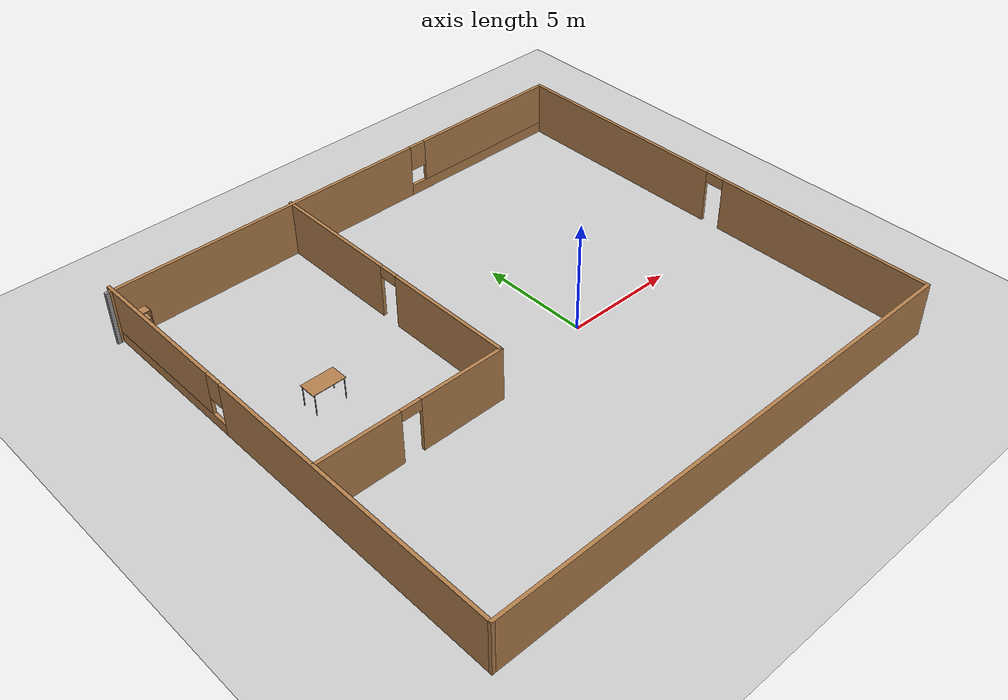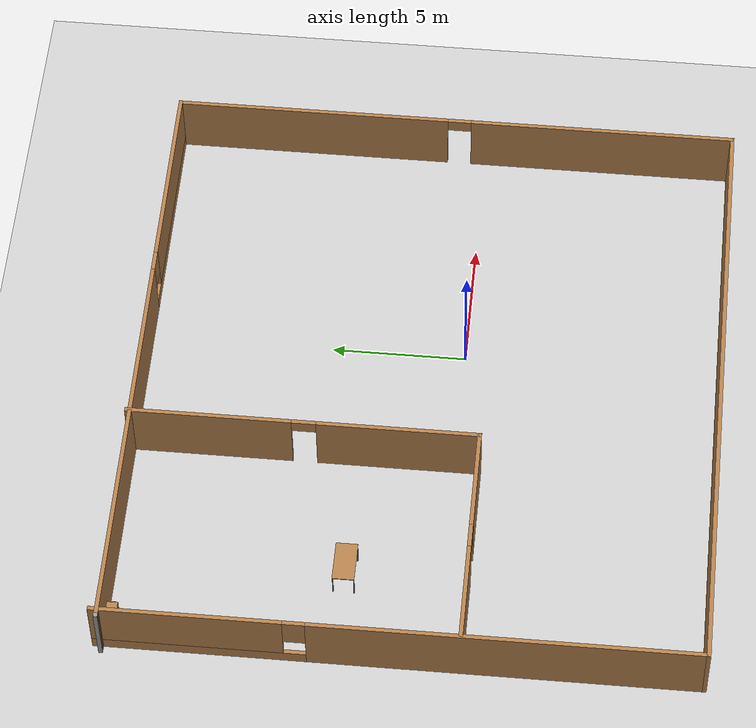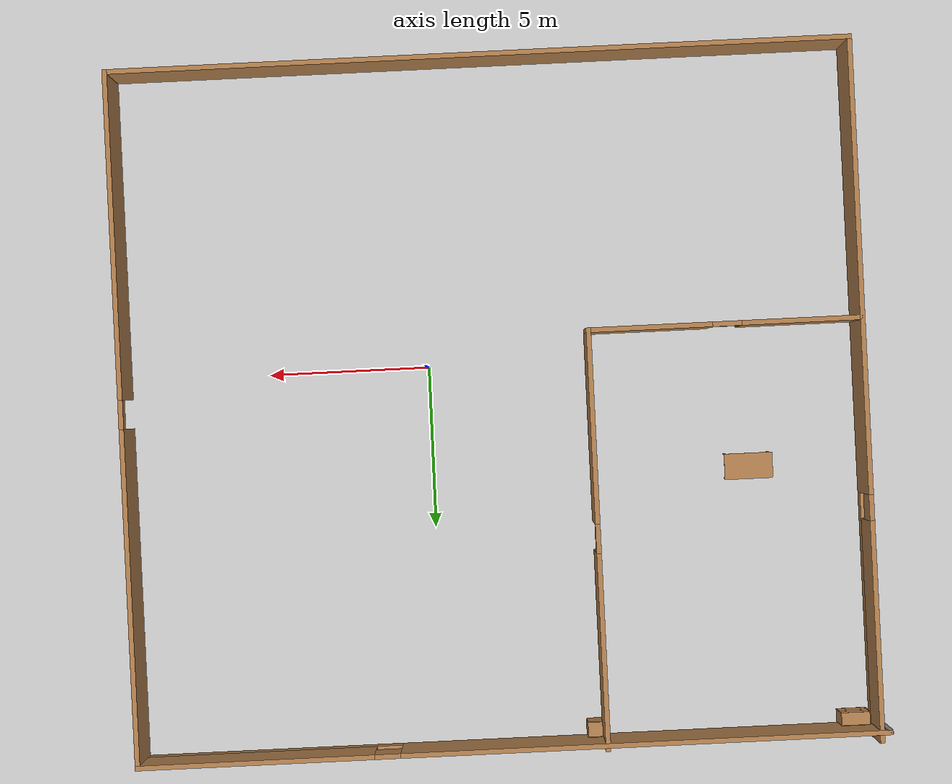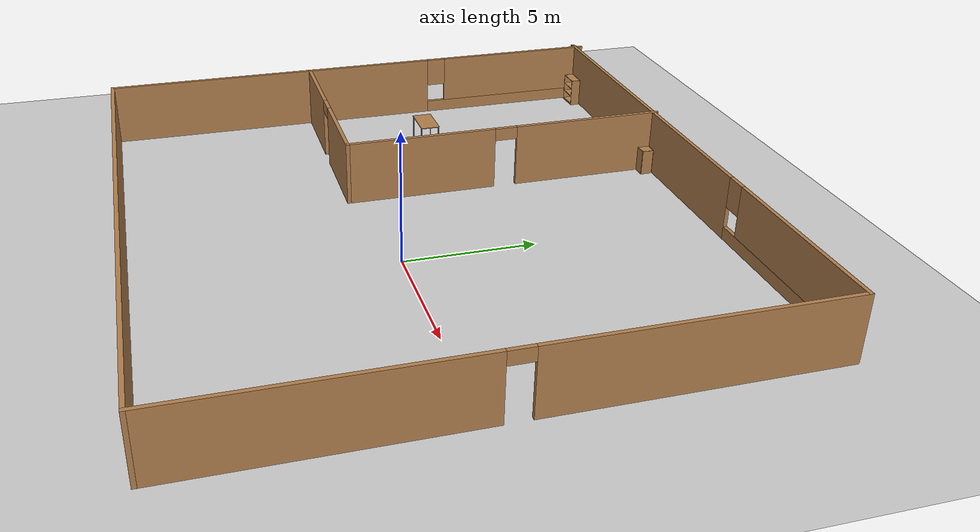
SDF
<sdf version="1.7">
 <world name="default">
  <light name="sun" type="directional">
   <pose>0 0 10 0 -0 0</pose>
   <diffuse>0.8 0.8 0.8 1</diffuse>
   <specular>0.2 0.2 0.2 1</specular>
   <attenuation>
    <range>1000</range>
    <constant>0.9</constant>
    <linear>0.01</linear>
    <quadratic>0.001</quadratic>
   </attenuation>
   <direction>-0.5 0.1 -0.9</direction>
   <spot><inner_angle>0</inner_angle><outer_angle>0</outer_angle><falloff>0</falloff></spot>
  </light>
  <model name="ground_plane">
   <static>1</static>
   <link name="link">
    <collision name="collision">
     <geometry><plane><normal>0 0 1</normal><size>100 100</size></plane></geometry>
     <surface>
      <contact><collide_bitmask>65535</collide_bitmask></contact>
      <friction><ode><mu>100</mu><mu2>50</mu2></ode></friction>
     </surface>
    </collision>
    <visual name="visual">
     <cast_shadows>0</cast_shadows>
     <geometry><plane><normal>0 0 1</normal><size>100 100</size></plane></geometry>
     <material>
      <script><uri>file://media/materials/scripts/gazebo.material</uri><name>Gazebo/Grey</name></script>
     </material>
    </visual>
   </link>
  </model>
  <gravity>0 0 -9.8</gravity>
  <magnetic_field>6e-06 2.3e-05 -4.2e-05</magnetic_field>
  <atmosphere type="adiabatic"/>
  <physics type="ode">
   <max_step_size>0.001</max_step_size>
   <real_time_factor>1</real_time_factor>
   <real_time_update_rate>1000</real_time_update_rate>
  </physics>
  <scene><ambient>0.4 0.4 0.4 1</ambient><background>0.7 0.7 0.7 1</background><shadows>1</shadows></scene>
  <audio><device>default</device></audio>
  <spherical_coordinates>
   <surface_model>EARTH_WGS84</surface_model>
   <latitude_deg>0</latitude_deg>
   <longitude_deg>0</longitude_deg>
   <elevation>0</elevation>
   <heading_deg>0</heading_deg>
  </spherical_coordinates>
  <model name="project_house_model">
   <pose>-2.116 1.303 0 0 -0 0</pose>
   <link name="Wall_2">
    <collision name="Wall_2_Collision">
     <geometry><box><size>0.16 0.15 2.5</size></box></geometry>
     <pose>0 0 1.25 0 -0 0</pose>
    </collision>
    <visual name="Wall_2_Visual">
     <pose>0 0 1.25 0 -0 0</pose>
     <geometry><box><size>0.16 0.15 2.5</size></box></geometry>
     <material>
      <script><uri>file://media/materials/scripts/gazebo.material</uri><name>Gazebo/Grey</name></script>
      <ambient>1 1 1 1</ambient>
     </material>
     <meta><layer>0</layer></meta>
    </visual>
    <pose>-11.55 10.55 0 0 -0 0</pose>
   </link>
   <link name="Wall_3">
    <pose>0.004999 10.55 0 0 -0 0</pose>
    <visual name="Wall_3_Visual_0">
     <pose>-4.07524 0 1.25 0 -0 0</pose>
     <geometry><box><size>15.0995 0.15 2.5</size></box></geometry>
     <material>
      <script><uri>file://media/materials/scripts/gazebo.material</uri><name>Gazebo/Wood</name></script>
      <ambient>1 1 1 1</ambient>
     </material>
     <meta><layer>0</layer></meta>
    </visual>
    <collision name="Wall_3_Collision_0">
     <geometry><box><size>15.0995 0.15 2.5</size></box></geometry>
     <pose>-4.07524 0 1.25 0 -0 0</pose>
    </collision>
    <visual name="Wall_3_Visual_1">
     <pose>7.54976 0 0.25 0 -0 0</pose>
     <geometry><box><size>8.15049 0.15 0.5</size></box></geometry>
     <material>
      <script><uri>file://media/materials/scripts/gazebo.material</uri><name>Gazebo/Wood</name></script>
      <ambient>1 1 1 1</ambient>
     </material>
     <meta><layer>0</layer></meta>
    </visual>
    <collision name="Wall_3_Collision_1">
     <geometry><box><size>8.15049 0.15 0.5</size></box></geometry>
     <pose>7.54976 0 0.25 0 -0 0</pose>
    </collision>
    <visual name="Wall_3_Visual_2">
     <pose>7.94976 0 1.5 0 -0 0</pose>
     <geometry><box><size>7.35049 0.15 2</size></box></geometry>
     <material>
      <script><uri>file://media/materials/scripts/gazebo.material</uri><name>Gazebo/Wood</name></script>
      <ambient>1 1 1 1</ambient>
     </material>
     <meta><layer>0</layer></meta>
    </visual>
    <collision name="Wall_3_Collision_2">
     <geometry><box><size>7.35049 0.15 2</size></box></geometry>
     <pose>7.94976 0 1.5 0 -0 0</pose>
    </collision>
    <visual name="Wall_3_Visual_3">
     <pose>3.87451 0 1.9 0 -0 0</pose>
     <geometry><box><size>0.8 0.15 1.2</size></box></geometry>
     <material>
      <script><uri>file://media/materials/scripts/gazebo.material</uri><name>Gazebo/Wood</name></script>
      <ambient>1 1 1 1</ambient>
     </material>
     <meta><layer>0</layer></meta>
    </visual>
    <collision name="Wall_3_Collision_3">
     <geometry><box><size>0.8 0.15 1.2</size></box></geometry>
     <pose>3.87451 0 1.9 0 -0 0</pose>
    </collision>
   </link>
   <link name="Wall_4">
    <pose>11.555 -0.125 0 0 -0 -1.5708</pose>
    <visual name="Wall_4_Visual_0">
     <pose>-5.51637 0 1.25 0 -0 0</pose>
     <geometry><box><size>10.4673 0.15 2.5</size></box></geometry>
     <material>
      <script><uri>file://media/materials/scripts/gazebo.material</uri><name>Gazebo/Wood</name></script>
      <ambient>1 1 1 1</ambient>
     </material>
     <meta><layer>0</layer></meta>
    </visual>
    <collision name="Wall_4_Collision_0">
     <geometry><box><size>10.4673 0.15 2.5</size></box></geometry>
     <pose>-5.51637 0 1.25 0 -0 0</pose>
    </collision>
    <visual name="Wall_4_Visual_1">
     <pose>5.68363 0 1.25 0 -0 0</pose>
     <geometry><box><size>10.1327 0.15 2.5</size></box></geometry>
     <material>
      <script><uri>file://media/materials/scripts/gazebo.material</uri><name>Gazebo/Wood</name></script>
      <ambient>1 1 1 1</ambient>
     </material>
     <meta><layer>0</layer></meta>
    </visual>
    <collision name="Wall_4_Collision_1">
     <geometry><box><size>10.1327 0.15 2.5</size></box></geometry>
     <pose>5.68363 0 1.25 0 -0 0</pose>
    </collision>
    <visual name="Wall_4_Visual_2">
     <pose>0.167253 0 2.25 0 -0 0</pose>
     <geometry><box><size>0.9 0.15 0.5</size></box></geometry>
     <material>
      <script><uri>file://media/materials/scripts/gazebo.material</uri><name>Gazebo/Wood</name></script>
      <ambient>1 1 1 1</ambient>
     </material>
     <meta><layer>0</layer></meta>
    </visual>
    <collision name="Wall_4_Collision_2">
     <geometry><box><size>0.9 0.15 0.5</size></box></geometry>
     <pose>0.167253 0 2.25 0 -0 0</pose>
    </collision>
   </link>
   <link name="Wall_5">
    <collision name="Wall_5_Collision">
     <geometry><box><size>23 0.15 2.5</size></box></geometry>
     <pose>0 0 1.25 0 -0 0</pose>
    </collision>
    <visual name="Wall_5_Visual">
     <pose>0 0 1.25 0 -0 0</pose>
     <geometry><box><size>23 0.15 2.5</size></box></geometry>
     <material>
      <script><uri>file://media/materials/scripts/gazebo.material</uri><name>Gazebo/Wood</name></script>
      <ambient>1 1 1 1</ambient>
     </material>
     <meta><layer>0</layer></meta>
    </visual>
    <pose>0.129999 -10.8 0 0 -0 3.14159</pose>
   </link>
   <link name="Wall_6">
    <pose>-11.295 -0 0 0 -0 1.5708</pose>
    <visual name="Wall_6_Visual_0">
     <pose>-3.8112 0 1.25 0 -0 0</pose>
     <geometry><box><size>14.1276 0.15 2.5</size></box></geometry>
     <material>
      <script><uri>file://media/materials/scripts/gazebo.material</uri><name>Gazebo/Wood</name></script>
      <ambient>1 1 1 1</ambient>
     </material>
     <meta><layer>0</layer></meta>
    </visual>
    <collision name="Wall_6_Collision_0">
     <geometry><box><size>14.1276 0.15 2.5</size></box></geometry>
     <pose>-3.8112 0 1.25 0 -0 0</pose>
    </collision>
    <visual name="Wall_6_Visual_1">
     <pose>7.0638 0 0.25 0 -0 0</pose>
     <geometry><box><size>7.62241 0.15 0.5</size></box></geometry>
     <material>
      <script><uri>file://media/materials/scripts/gazebo.material</uri><name>Gazebo/Wood</name></script>
      <ambient>1 1 1 1</ambient>
     </material>
     <meta><layer>0</layer></meta>
    </visual>
    <collision name="Wall_6_Collision_1">
     <geometry><box><size>7.62241 0.15 0.5</size></box></geometry>
     <pose>7.0638 0 0.25 0 -0 0</pose>
    </collision>
    <visual name="Wall_6_Visual_2">
     <pose>7.4638 0 1.5 0 -0 0</pose>
     <geometry><box><size>6.82241 0.15 2</size></box></geometry>
     <material>
      <script><uri>file://media/materials/scripts/gazebo.material</uri><name>Gazebo/Wood</name></script>
      <ambient>1 1 1 1</ambient>
     </material>
     <meta><layer>0</layer></meta>
    </visual>
    <collision name="Wall_6_Collision_2">
     <geometry><box><size>6.82241 0.15 2</size></box></geometry>
     <pose>7.4638 0 1.5 0 -0 0</pose>
    </collision>
    <visual name="Wall_6_Visual_3">
     <pose>3.65259 0 1.9 0 -0 0</pose>
     <geometry><box><size>0.8 0.15 1.2</size></box></geometry>
     <material>
      <script><uri>file://media/materials/scripts/gazebo.material</uri><name>Gazebo/Wood</name></script>
      <ambient>1 1 1 1</ambient>
     </material>
     <meta><layer>0</layer></meta>
    </visual>
    <collision name="Wall_6_Collision_3">
     <geometry><box><size>0.8 0.15 1.2</size></box></geometry>
     <pose>3.65259 0 1.9 0 -0 0</pose>
    </collision>
   </link>
   <link name="Wall_8">
    <pose>-2.88515 4.23116 0 0 -0 -1.5708</pose>
    <visual name="Wall_8_Visual_0">
     <pose>-3.45912 0 1.25 0 -0 0</pose>
     <geometry><box><size>6.08176 0.15 2.5</size></box></geometry>
     <material>
      <script><uri>file://media/materials/scripts/gazebo.material</uri><name>Gazebo/Wood</name></script>
      <ambient>1 1 1 1</ambient>
     </material>
     <meta><layer>0</layer></meta>
    </visual>
    <collision name="Wall_8_Collision_0">
     <geometry><box><size>6.08176 0.15 2.5</size></box></geometry>
     <pose>-3.45912 0 1.25 0 -0 0</pose>
    </collision>
    <visual name="Wall_8_Visual_1">
     <pose>3.49088 0 1.25 0 -0 0</pose>
     <geometry><box><size>6.01824 0.15 2.5</size></box></geometry>
     <material>
      <script><uri>file://media/materials/scripts/gazebo.material</uri><name>Gazebo/Wood</name></script>
      <ambient>1 1 1 1</ambient>
     </material>
     <meta><layer>0</layer></meta>
    </visual>
    <collision name="Wall_8_Collision_1">
     <geometry><box><size>6.01824 0.15 2.5</size></box></geometry>
     <pose>3.49088 0 1.25 0 -0 0</pose>
    </collision>
    <visual name="Wall_8_Visual_2">
     <pose>0.031759 0 2.25 0 -0 0</pose>
     <geometry><box><size>0.9 0.15 0.5</size></box></geometry>
     <material>
      <script><uri>file://media/materials/scripts/gazebo.material</uri><name>Gazebo/Wood</name></script>
      <ambient>1 1 1 1</ambient>
     </material>
     <meta><layer>0</layer></meta>
    </visual>
    <collision name="Wall_8_Collision_2">
     <geometry><box><size>0.9 0.15 0.5</size></box></geometry>
     <pose>0.031759 0 2.25 0 -0 0</pose>
    </collision>
   </link>
   <link name="Wall_9">
    <pose>-7.06015 -2.19384 0 0 -0 3.14159</pose>
    <visual name="Wall_9_Visual_0">
     <pose>-2.30643 0 1.25 0 -0 0</pose>
     <geometry><box><size>3.88714 0.15 2.5</size></box></geometry>
     <material>
      <script><uri>file://media/materials/scripts/gazebo.material</uri><name>Gazebo/Wood</name></script>
      <ambient>1 1 1 1</ambient>
     </material>
     <meta><layer>0</layer></meta>
    </visual>
    <collision name="Wall_9_Collision_0">
     <geometry><box><size>3.88714 0.15 2.5</size></box></geometry>
     <pose>-2.30643 0 1.25 0 -0 0</pose>
    </collision>
    <visual name="Wall_9_Visual_1">
     <pose>2.39357 0 1.25 0 -0 0</pose>
     <geometry><box><size>3.71285 0.15 2.5</size></box></geometry>
     <material>
      <script><uri>file://media/materials/scripts/gazebo.material</uri><name>Gazebo/Wood</name></script>
      <ambient>1 1 1 1</ambient>
     </material>
     <meta><layer>0</layer></meta>
    </visual>
    <collision name="Wall_9_Collision_1">
     <geometry><box><size>3.71285 0.15 2.5</size></box></geometry>
     <pose>2.39357 0 1.25 0 -0 0</pose>
    </collision>
    <visual name="Wall_9_Visual_2">
     <pose>0.087145 0 2.25 0 -0 0</pose>
     <geometry><box><size>0.9 0.15 0.5</size></box></geometry>
     <material>
      <script><uri>file://media/materials/scripts/gazebo.material</uri><name>Gazebo/Wood</name></script>
      <ambient>1 1 1 1</ambient>
     </material>
     <meta><layer>0</layer></meta>
    </visual>
    <collision name="Wall_9_Collision_2">
     <geometry><box><size>0.9 0.15 0.5</size></box></geometry>
     <pose>0.087145 0 2.25 0 -0 0</pose>
    </collision>
   </link>
   <static>1</static>
  </model>
  <model name="cabinet">
   <static>1</static>
   <link name="cabinet_bottom_plate">
    <inertial>
     <pose>0 0 -1 0 -0 0</pose>
     <inertia><ixx>2.05</ixx><ixy>0</ixy><ixz>0</ixz><iyy>2.05</iyy><iyz>0</iyz><izz>2.05</izz></inertia>
     <mass>25</mass>
    </inertial>
    <collision name="cabinet_bottom_plate_geom">
     <pose>0 0 0.01 0 -0 0</pose>
     <geometry><box><size>0.45 0.45 0.02</size></box></geometry>
    </collision>
    <visual name="cabinet_bottom_plate_geom_visual">
     <pose>0 0 0.01 0 -0 0</pose>
     <geometry><box><size>0.45 0.45 0.02</size></box></geometry>
     <material>
      <script><uri>file://media/materials/scripts/gazebo.material</uri><name>Gazebo/Wood</name></script>
     </material>
    </visual>
    <collision name="cabinet_bottom_plate_geom_cabinet_back_plate">
     <pose>0.235 0 0.51 0 -0 0</pose>
     <geometry><box><size>0.02 0.45 1.02</size></box></geometry>
    </collision>
    <visual name="cabinet_bottom_plate_geom_cabinet_back_plate_visual">
     <pose>0.235 0 0.51 0 -0 0</pose>
     <geometry><box><size>0.02 0.45 1.02</size></box></geometry>
     <material>
      <script><uri>file://media/materials/scripts/gazebo.material</uri><name>Gazebo/Wood</name></script>
     </material>
    </visual>
    <collision name="cabinet_bottom_plate_geom_cabinet_left_plate">
     <pose>0 0.235 0.51 0 -0 0</pose>
     <geometry><box><size>0.45 0.02 1.02</size></box></geometry>
    </collision>
    <visual name="cabinet_bottom_plate_geom_cabinet_left_plate_visual">
     <pose>0 0.235 0.51 0 -0 0</pose>
     <geometry><box><size>0.45 0.02 1.02</size></box></geometry>
     <material>
      <script><uri>file://media/materials/scripts/gazebo.material</uri><name>Gazebo/Wood</name></script>
     </material>
    </visual>
    <collision name="cabinet_bottom_plate_geom_cabinet_middle_plate">
     <pose>0 0 0.51 0 -0 0</pose>
     <geometry><box><size>0.45 0.45 0.02</size></box></geometry>
    </collision>
    <visual name="cabinet_bottom_plate_geom_cabinet_middle_plate_visual">
     <pose>0 0 0.51 0 -0 0</pose>
     <geometry><box><size>0.45 0.45 0.02</size></box></geometry>
     <material>
      <script><uri>file://media/materials/scripts/gazebo.material</uri><name>Gazebo/Wood</name></script>
     </material>
    </visual>
    <collision name="cabinet_bottom_plate_geom_cabinet_right_plate">
     <pose>0 -0.235 0.51 0 -0 0</pose>
     <geometry><box><size>0.45 0.02 1.02</size></box></geometry>
    </collision>
    <visual name="cabinet_bottom_plate_geom_cabinet_right_plate_visual">
     <pose>0 -0.235 0.51 0 -0 0</pose>
     <geometry><box><size>0.45 0.02 1.02</size></box></geometry>
     <material>
      <script><uri>file://media/materials/scripts/gazebo.material</uri><name>Gazebo/Wood</name></script>
     </material>
    </visual>
    <collision name="cabinet_bottom_plate_geom_cabinet_top_plate">
     <pose>0 0 1.01 0 -0 0</pose>
     <geometry><box><size>0.45 0.45 0.02</size></box></geometry>
    </collision>
    <visual name="cabinet_bottom_plate_geom_cabinet_top_plate_visual">
     <pose>0 0 1.01 0 -0 0</pose>
     <geometry><box><size>0.45 0.45 0.02</size></box></geometry>
     <material>
      <script><uri>file://media/materials/scripts/gazebo.material</uri><name>Gazebo/Wood</name></script>
     </material>
    </visual>
   </link>
   <pose>-4.68001 11.5098 0 0 -0 0</pose>
  </model>
  <model name="bookshelf">
   <static>1</static>
   <link name="link">
    <inertial><mass>1</mass></inertial>
    <collision name="back">
     <pose>0 0.005 0.6 0 -0 0</pose>
     <geometry><box><size>0.9 0.01 1.2</size></box></geometry>
    </collision>
    <visual name="visual1">
     <pose>0 0.005 0.6 0 -0 0</pose>
     <geometry><box><size>0.9 0.01 1.2</size></box></geometry>
     <material>
      <script><uri>file://media/materials/scripts/gazebo.material</uri><name>Gazebo/Wood</name></script>
     </material>
    </visual>
    <collision name="left_side">
     <pose>0.45 -0.195 0.6 0 -0 0</pose>
     <geometry><box><size>0.02 0.4 1.2</size></box></geometry>
    </collision>
    <visual name="visual2">
     <pose>0.45 -0.195 0.6 0 -0 0</pose>
     <geometry><box><size>0.02 0.4 1.2</size></box></geometry>
     <material>
      <script><uri>file://media/materials/scripts/gazebo.material</uri><name>Gazebo/Wood</name></script>
     </material>
    </visual>
    <collision name="right_side">
     <pose>-0.45 -0.195 0.6 0 -0 0</pose>
     <geometry><box><size>0.02 0.4 1.2</size></box></geometry>
    </collision>
    <visual name="visual3">
     <pose>-0.45 -0.195 0.6 0 -0 0</pose>
     <geometry><box><size>0.02 0.4 1.2</size></box></geometry>
     <material>
      <script><uri>file://media/materials/scripts/gazebo.material</uri><name>Gazebo/Wood</name></script>
     </material>
    </visual>
    <collision name="bottom">
     <pose>0 -0.195 0.03 0 -0 0</pose>
     <geometry><box><size>0.88 0.4 0.06</size></box></geometry>
    </collision>
    <visual name="visual4">
     <pose>0 -0.195 0.03 0 -0 0</pose>
     <geometry><box><size>0.88 0.4 0.06</size></box></geometry>
     <material>
      <script><uri>file://media/materials/scripts/gazebo.material</uri><name>Gazebo/Wood</name></script>
     </material>
    </visual>
    <collision name="top">
     <pose>0 -0.195 1.19 0 -0 0</pose>
     <geometry><box><size>0.88 0.4 0.02</size></box></geometry>
    </collision>
    <visual name="visual5">
     <pose>0 -0.195 1.19 0 -0 0</pose>
     <geometry><box><size>0.88 0.4 0.02</size></box></geometry>
     <material>
      <script><uri>file://media/materials/scripts/gazebo.material</uri><name>Gazebo/Wood</name></script>
     </material>
    </visual>
    <collision name="low_shelf">
     <pose>0 -0.195 0.43 0 -0 0</pose>
     <geometry><box><size>0.88 0.4 0.02</size></box></geometry>
    </collision>
    <visual name="visual6">
     <pose>0 -0.195 0.43 0 -0 0</pose>
     <geometry><box><size>0.88 0.4 0.02</size></box></geometry>
     <material>
      <script><uri>file://media/materials/scripts/gazebo.material</uri><name>Gazebo/Wood</name></script>
     </material>
    </visual>
    <collision name="high_shelf">
     <pose>0 -0.195 0.8 0 -0 0</pose>
     <geometry><box><size>0.88 0.4 0.02</size></box></geometry>
    </collision>
    <visual name="visual7">
     <pose>0 -0.195 0.8 0 -0 0</pose>
     <geometry><box><size>0.88 0.4 0.02</size></box></geometry>
     <material>
      <script><uri>file://media/materials/scripts/gazebo.material</uri><name>Gazebo/Wood</name></script>
     </material>
    </visual>
   </link>
   <pose>-12.7831 11.7391 0 0 -0 0</pose>
  </model>
  <model name="table">
   <static>1</static>
   <link name="link">
    <collision name="surface">
     <pose>0 0 1 0 -0 0</pose>
     <geometry><box><size>1.5 0.8 0.03</size></box></geometry>
     <surface><friction><ode><mu>0.6</mu><mu2>0.6</mu2></ode></friction></surface>
    </collision>
    <visual name="visual1">
     <pose>0 0 1 0 -0 0</pose>
     <geometry><box><size>1.5 0.8 0.03</size></box></geometry>
     <material>
      <script><uri>file://media/materials/scripts/gazebo.material</uri><name>Gazebo/Wood</name></script>
     </material>
    </visual>
    <collision name="front_left_leg">
     <pose>0.68 0.38 0.5 0 -0 0</pose>
     <geometry><cylinder><radius>0.02</radius><length>1</length></cylinder></geometry>
    </collision>
    <visual name="front_left_leg">
     <pose>0.68 0.38 0.5 0 -0 0</pose>
     <geometry><cylinder><radius>0.02</radius><length>1</length></cylinder></geometry>
     <material>
      <script><uri>file://media/materials/scripts/gazebo.material</uri><name>Gazebo/Grey</name></script>
     </material>
    </visual>
    <collision name="front_right_leg">
     <pose>0.68 -0.38 0.5 0 -0 0</pose>
     <geometry><cylinder><radius>0.02</radius><length>1</length></cylinder></geometry>
    </collision>
    <visual name="front_right_leg">
     <pose>0.68 -0.38 0.5 0 -0 0</pose>
     <geometry><cylinder><radius>0.02</radius><length>1</length></cylinder></geometry>
     <material>
      <script><uri>file://media/materials/scripts/gazebo.material</uri><name>Gazebo/Grey</name></script>
     </material>
    </visual>
    <collision name="back_right_leg">
     <pose>-0.68 -0.38 0.5 0 -0 0</pose>
     <geometry><cylinder><radius>0.02</radius><length>1</length></cylinder></geometry>
    </collision>
    <visual name="back_right_leg">
     <pose>-0.68 -0.38 0.5 0 -0 0</pose>
     <geometry><cylinder><radius>0.02</radius><length>1</length></cylinder></geometry>
     <material>
      <script><uri>file://media/materials/scripts/gazebo.material</uri><name>Gazebo/Grey</name></script>
     </material>
    </visual>
    <collision name="back_left_leg">
     <pose>-0.68 0.38 0.5 0 -0 0</pose>
     <geometry><cylinder><radius>0.02</radius><length>1</length></cylinder></geometry>
    </collision>
    <visual name="back_left_leg">
     <pose>-0.68 0.38 0.5 0 -0 0</pose>
     <geometry><cylinder><radius>0.02</radius><length>1</length></cylinder></geometry>
     <material>
      <script><uri>file://media/materials/scripts/gazebo.material</uri><name>Gazebo/Grey</name></script>
     </material>
    </visual>
   </link>
   <pose>-9.83817 3.53348 0 0 -0 0</pose>
  </model>
  <light name="user_directional_light_0" type="directional">
   <pose>-11.5141 -10.3457 1 0 -0 0</pose>
   <diffuse>0.5 0.5 0.5 1</diffuse>
   <specular>0.1 0.1 0.1 1</specular>
   <direction>0.1 0.1 -0.9</direction>
   <attenuation>
    <range>20</range>
    <constant>0.5</constant>
    <linear>0.01</linear>
    <quadratic>0.001</quadratic>
   </attenuation>
  </light>
  <light name="user_directional_light_1" type="directional">
   <pose>-6.3169 -10.7442 1 0 -0 0</pose>
   <diffuse>0.5 0.5 0.5 1</diffuse>
   <specular>0.1 0.1 0.1 1</specular>
   <direction>0.1 0.1 -0.9</direction>
   <attenuation>
    <range>20</range>
    <constant>0.5</constant>
    <linear>0.01</linear>
    <quadratic>0.001</quadratic>
   </attenuation>
  </light>
  <light name="user_directional_light_2" type="directional">
   <pose>10.2742 12.0614 1 0 -0 0</pose>
   <diffuse>0.5 0.5 0.5 1</diffuse>
   <specular>0.1 0.1 0.1 1</specular>
   <direction>0.1 0.1 -0.9</direction>
   <attenuation>
    <range>20</range>
    <constant>0.5</constant>
    <linear>0.01</linear>
    <quadratic>0.001</quadratic>
   </attenuation>
  </light>
  <light name="user_directional_light_3" type="directional">
   <pose>8.87057 -10.6424 1 0 -0 0</pose>
   <diffuse>0.5 0.5 0.5 1</diffuse>
   <specular>0.1 0.1 0.1 1</specular>
   <direction>0.1 0.1 -0.9</direction>
   <attenuation>
    <range>20</range>
    <constant>0.5</constant>
    <linear>0.01</linear>
    <quadratic>0.001</quadratic>
   </attenuation>
  </light>
  <light name="user_directional_light_4" type="directional">
   <pose>4.73636 13.1241 1 0 -0 0</pose>
   <diffuse>0.5 0.5 0.5 1</diffuse>
   <specular>0.1 0.1 0.1 1</specular>
   <direction>0.1 0.1 -0.9</direction>
   <attenuation>
    <range>20</range>
    <constant>0.5</constant>
    <linear>0.01</linear>
    <quadratic>0.001</quadratic>
   </attenuation>
  </light>
  <light name="user_directional_light_5" type="directional">
   <pose>-11.3215 13.0916 1 0 -0 0</pose>
   <diffuse>0.5 0.5 0.5 1</diffuse>
   <specular>0.1 0.1 0.1 1</specular>
   <direction>0.1 0.1 -0.9</direction>
   <attenuation>
    <range>20</range>
    <constant>0.5</constant>
    <linear>0.01</linear>
    <quadratic>0.001</quadratic>
   </attenuation>
  </light>
 </world>
</sdf>
